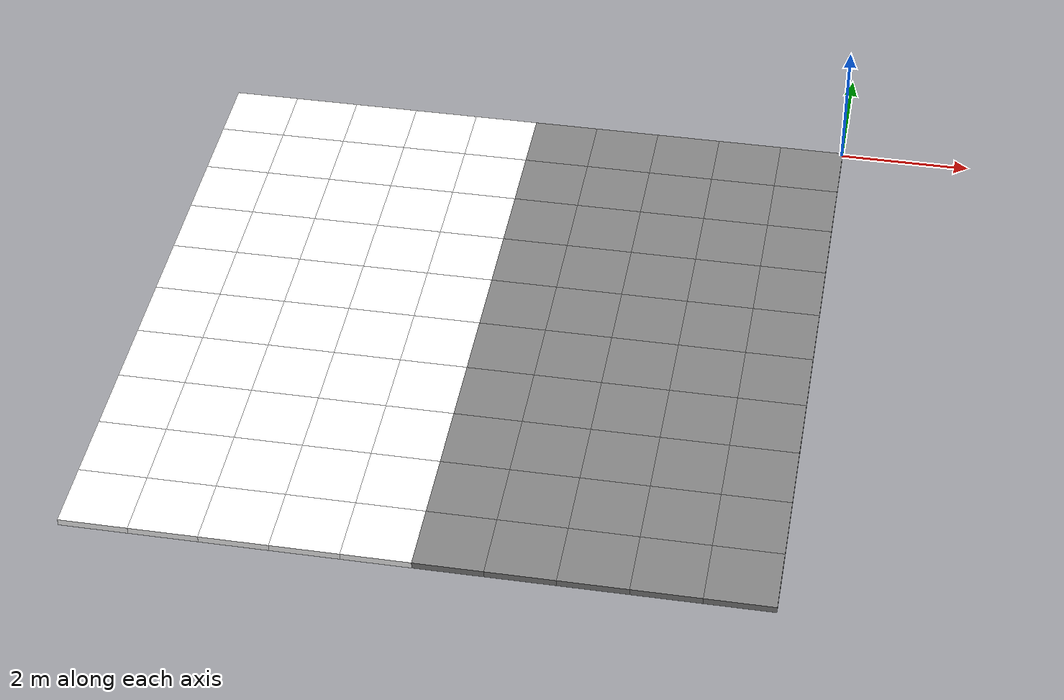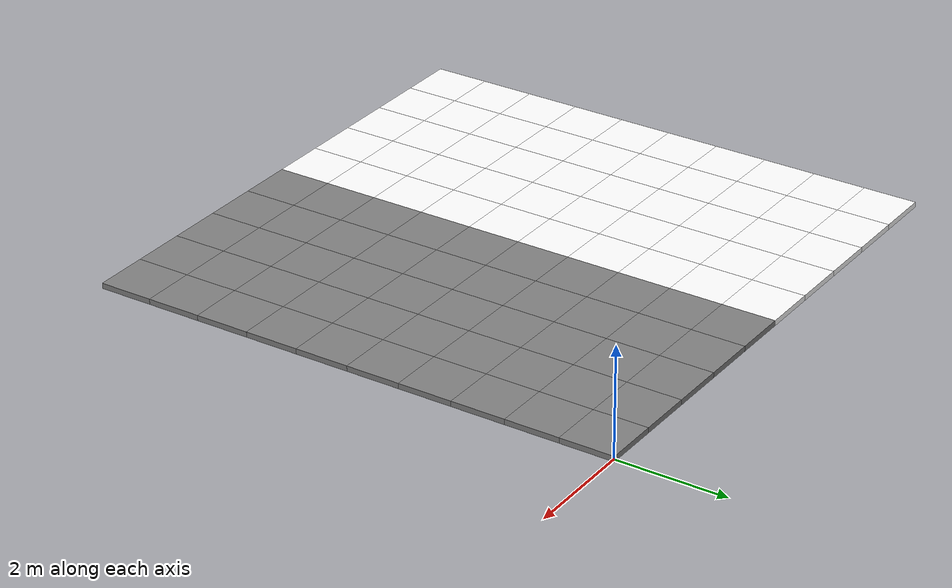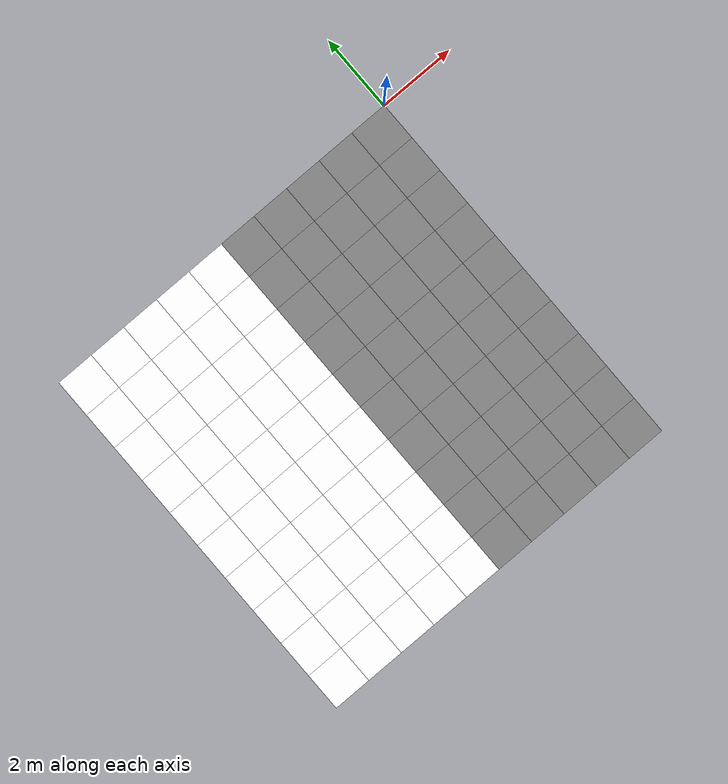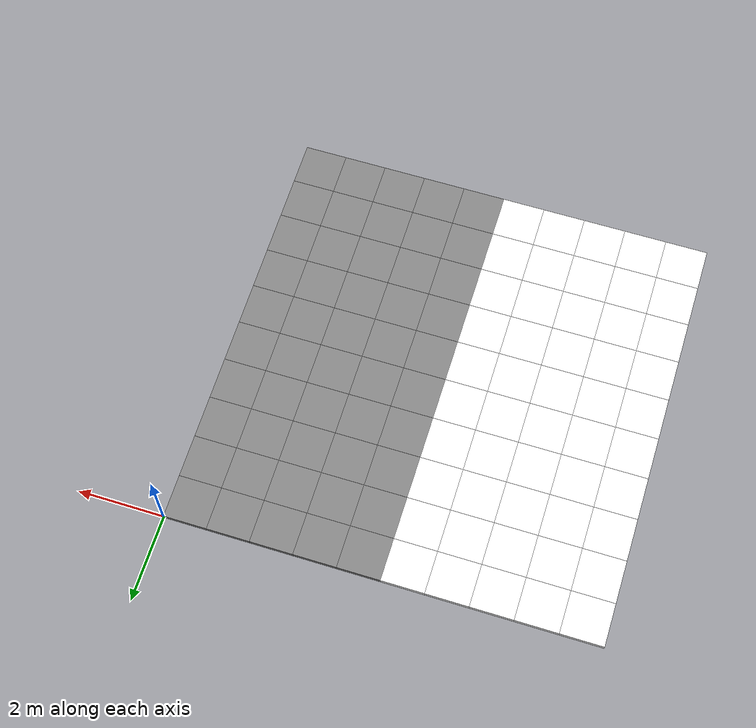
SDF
<sdf version="1.8">
 <world name="binary_discrimination_world">
  <model name="tile_-9.5_-9.5">
   <static>true</static>
   <pose>-9.5 -9.5 0 0 0 0</pose>
   <link name="link">
    <collision name="collision"><geometry><box><size>1 1 0.1</size></box></geometry></collision>
    <visual name="visual">
     <geometry><box><size>1 1 0.1</size></box></geometry>
     <material><ambient>1 1 1 1</ambient><diffuse>1 1 1 1</diffuse></material>
    </visual>
   </link>
  </model>
  <model name="tile_-9.5_-8.5">
   <static>true</static>
   <pose>-9.5 -8.5 0 0 0 0</pose>
   <link name="link">
    <collision name="collision"><geometry><box><size>1 1 0.1</size></box></geometry></collision>
    <visual name="visual">
     <geometry><box><size>1 1 0.1</size></box></geometry>
     <material><ambient>1 1 1 1</ambient><diffuse>1 1 1 1</diffuse></material>
    </visual>
   </link>
  </model>
  <model name="tile_-9.5_-7.5">
   <static>true</static>
   <pose>-9.5 -7.5 0 0 0 0</pose>
   <link name="link">
    <collision name="collision"><geometry><box><size>1 1 0.1</size></box></geometry></collision>
    <visual name="visual">
     <geometry><box><size>1 1 0.1</size></box></geometry>
     <material><ambient>1 1 1 1</ambient><diffuse>1 1 1 1</diffuse></material>
    </visual>
   </link>
  </model>
  <model name="tile_-9.5_-6.5">
   <static>true</static>
   <pose>-9.5 -6.5 0 0 0 0</pose>
   <link name="link">
    <collision name="collision"><geometry><box><size>1 1 0.1</size></box></geometry></collision>
    <visual name="visual">
     <geometry><box><size>1 1 0.1</size></box></geometry>
     <material><ambient>1 1 1 1</ambient><diffuse>1 1 1 1</diffuse></material>
    </visual>
   </link>
  </model>
  <model name="tile_-9.5_-5.5">
   <static>true</static>
   <pose>-9.5 -5.5 0 0 0 0</pose>
   <link name="link">
    <collision name="collision"><geometry><box><size>1 1 0.1</size></box></geometry></collision>
    <visual name="visual">
     <geometry><box><size>1 1 0.1</size></box></geometry>
     <material><ambient>1 1 1 1</ambient><diffuse>1 1 1 1</diffuse></material>
    </visual>
   </link>
  </model>
  <model name="tile_-9.5_-4.5">
   <static>true</static>
   <pose>-9.5 -4.5 0 0 0 0</pose>
   <link name="link">
    <collision name="collision"><geometry><box><size>1 1 0.1</size></box></geometry></collision>
    <visual name="visual">
     <geometry><box><size>1 1 0.1</size></box></geometry>
     <material><ambient>1 1 1 1</ambient><diffuse>1 1 1 1</diffuse></material>
    </visual>
   </link>
  </model>
  <model name="tile_-9.5_-3.5">
   <static>true</static>
   <pose>-9.5 -3.5 0 0 0 0</pose>
   <link name="link">
    <collision name="collision"><geometry><box><size>1 1 0.1</size></box></geometry></collision>
    <visual name="visual">
     <geometry><box><size>1 1 0.1</size></box></geometry>
     <material><ambient>1 1 1 1</ambient><diffuse>1 1 1 1</diffuse></material>
    </visual>
   </link>
  </model>
  <model name="tile_-9.5_-2.5">
   <static>true</static>
   <pose>-9.5 -2.5 0 0 0 0</pose>
   <link name="link">
    <collision name="collision"><geometry><box><size>1 1 0.1</size></box></geometry></collision>
    <visual name="visual">
     <geometry><box><size>1 1 0.1</size></box></geometry>
     <material><ambient>1 1 1 1</ambient><diffuse>1 1 1 1</diffuse></material>
    </visual>
   </link>
  </model>
  <model name="tile_-9.5_-1.5">
   <static>true</static>
   <pose>-9.5 -1.5 0 0 0 0</pose>
   <link name="link">
    <collision name="collision"><geometry><box><size>1 1 0.1</size></box></geometry></collision>
    <visual name="visual">
     <geometry><box><size>1 1 0.1</size></box></geometry>
     <material><ambient>1 1 1 1</ambient><diffuse>1 1 1 1</diffuse></material>
    </visual>
   </link>
  </model>
  <model name="tile_-9.5_-0.5">
   <static>true</static>
   <pose>-9.5 -0.5 0 0 0 0</pose>
   <link name="link">
    <collision name="collision"><geometry><box><size>1 1 0.1</size></box></geometry></collision>
    <visual name="visual">
     <geometry><box><size>1 1 0.1</size></box></geometry>
     <material><ambient>1 1 1 1</ambient><diffuse>1 1 1 1</diffuse></material>
    </visual>
   </link>
  </model>
  <model name="tile_-8.5_-9.5">
   <static>true</static>
   <pose>-8.5 -9.5 0 0 0 0</pose>
   <link name="link">
    <collision name="collision"><geometry><box><size>1 1 0.1</size></box></geometry></collision>
    <visual name="visual">
     <geometry><box><size>1 1 0.1</size></box></geometry>
     <material><ambient>1 1 1 1</ambient><diffuse>1 1 1 1</diffuse></material>
    </visual>
   </link>
  </model>
  <model name="tile_-8.5_-8.5">
   <static>true</static>
   <pose>-8.5 -8.5 0 0 0 0</pose>
   <link name="link">
    <collision name="collision"><geometry><box><size>1 1 0.1</size></box></geometry></collision>
    <visual name="visual">
     <geometry><box><size>1 1 0.1</size></box></geometry>
     <material><ambient>1 1 1 1</ambient><diffuse>1 1 1 1</diffuse></material>
    </visual>
   </link>
  </model>
  <model name="tile_-8.5_-7.5">
   <static>true</static>
   <pose>-8.5 -7.5 0 0 0 0</pose>
   <link name="link">
    <collision name="collision"><geometry><box><size>1 1 0.1</size></box></geometry></collision>
    <visual name="visual">
     <geometry><box><size>1 1 0.1</size></box></geometry>
     <material><ambient>1 1 1 1</ambient><diffuse>1 1 1 1</diffuse></material>
    </visual>
   </link>
  </model>
  <model name="tile_-8.5_-6.5">
   <static>true</static>
   <pose>-8.5 -6.5 0 0 0 0</pose>
   <link name="link">
    <collision name="collision"><geometry><box><size>1 1 0.1</size></box></geometry></collision>
    <visual name="visual">
     <geometry><box><size>1 1 0.1</size></box></geometry>
     <material><ambient>1 1 1 1</ambient><diffuse>1 1 1 1</diffuse></material>
    </visual>
   </link>
  </model>
  <model name="tile_-8.5_-5.5">
   <static>true</static>
   <pose>-8.5 -5.5 0 0 0 0</pose>
   <link name="link">
    <collision name="collision"><geometry><box><size>1 1 0.1</size></box></geometry></collision>
    <visual name="visual">
     <geometry><box><size>1 1 0.1</size></box></geometry>
     <material><ambient>1 1 1 1</ambient><diffuse>1 1 1 1</diffuse></material>
    </visual>
   </link>
  </model>
  <model name="tile_-8.5_-4.5">
   <static>true</static>
   <pose>-8.5 -4.5 0 0 0 0</pose>
   <link name="link">
    <collision name="collision"><geometry><box><size>1 1 0.1</size></box></geometry></collision>
    <visual name="visual">
     <geometry><box><size>1 1 0.1</size></box></geometry>
     <material><ambient>1 1 1 1</ambient><diffuse>1 1 1 1</diffuse></material>
    </visual>
   </link>
  </model>
  <model name="tile_-8.5_-3.5">
   <static>true</static>
   <pose>-8.5 -3.5 0 0 0 0</pose>
   <link name="link">
    <collision name="collision"><geometry><box><size>1 1 0.1</size></box></geometry></collision>
    <visual name="visual">
     <geometry><box><size>1 1 0.1</size></box></geometry>
     <material><ambient>1 1 1 1</ambient><diffuse>1 1 1 1</diffuse></material>
    </visual>
   </link>
  </model>
  <model name="tile_-8.5_-2.5">
   <static>true</static>
   <pose>-8.5 -2.5 0 0 0 0</pose>
   <link name="link">
    <collision name="collision"><geometry><box><size>1 1 0.1</size></box></geometry></collision>
    <visual name="visual">
     <geometry><box><size>1 1 0.1</size></box></geometry>
     <material><ambient>1 1 1 1</ambient><diffuse>1 1 1 1</diffuse></material>
    </visual>
   </link>
  </model>
  <model name="tile_-8.5_-1.5">
   <static>true</static>
   <pose>-8.5 -1.5 0 0 0 0</pose>
   <link name="link">
    <collision name="collision"><geometry><box><size>1 1 0.1</size></box></geometry></collision>
    <visual name="visual">
     <geometry><box><size>1 1 0.1</size></box></geometry>
     <material><ambient>1 1 1 1</ambient><diffuse>1 1 1 1</diffuse></material>
    </visual>
   </link>
  </model>
  <model name="tile_-8.5_-0.5">
   <static>true</static>
   <pose>-8.5 -0.5 0 0 0 0</pose>
   <link name="link">
    <collision name="collision"><geometry><box><size>1 1 0.1</size></box></geometry></collision>
    <visual name="visual">
     <geometry><box><size>1 1 0.1</size></box></geometry>
     <material><ambient>1 1 1 1</ambient><diffuse>1 1 1 1</diffuse></material>
    </visual>
   </link>
  </model>
  <model name="tile_-7.5_-9.5">
   <static>true</static>
   <pose>-7.5 -9.5 0 0 0 0</pose>
   <link name="link">
    <collision name="collision"><geometry><box><size>1 1 0.1</size></box></geometry></collision>
    <visual name="visual">
     <geometry><box><size>1 1 0.1</size></box></geometry>
     <material><ambient>1 1 1 1</ambient><diffuse>1 1 1 1</diffuse></material>
    </visual>
   </link>
  </model>
  <model name="tile_-7.5_-8.5">
   <static>true</static>
   <pose>-7.5 -8.5 0 0 0 0</pose>
   <link name="link">
    <collision name="collision"><geometry><box><size>1 1 0.1</size></box></geometry></collision>
    <visual name="visual">
     <geometry><box><size>1 1 0.1</size></box></geometry>
     <material><ambient>1 1 1 1</ambient><diffuse>1 1 1 1</diffuse></material>
    </visual>
   </link>
  </model>
  <model name="tile_-7.5_-7.5">
   <static>true</static>
   <pose>-7.5 -7.5 0 0 0 0</pose>
   <link name="link">
    <collision name="collision"><geometry><box><size>1 1 0.1</size></box></geometry></collision>
    <visual name="visual">
     <geometry><box><size>1 1 0.1</size></box></geometry>
     <material><ambient>1 1 1 1</ambient><diffuse>1 1 1 1</diffuse></material>
    </visual>
   </link>
  </model>
  <model name="tile_-7.5_-6.5">
   <static>true</static>
   <pose>-7.5 -6.5 0 0 0 0</pose>
   <link name="link">
    <collision name="collision"><geometry><box><size>1 1 0.1</size></box></geometry></collision>
    <visual name="visual">
     <geometry><box><size>1 1 0.1</size></box></geometry>
     <material><ambient>1 1 1 1</ambient><diffuse>1 1 1 1</diffuse></material>
    </visual>
   </link>
  </model>
  <model name="tile_-7.5_-5.5">
   <static>true</static>
   <pose>-7.5 -5.5 0 0 0 0</pose>
   <link name="link">
    <collision name="collision"><geometry><box><size>1 1 0.1</size></box></geometry></collision>
    <visual name="visual">
     <geometry><box><size>1 1 0.1</size></box></geometry>
     <material><ambient>1 1 1 1</ambient><diffuse>1 1 1 1</diffuse></material>
    </visual>
   </link>
  </model>
  <model name="tile_-7.5_-4.5">
   <static>true</static>
   <pose>-7.5 -4.5 0 0 0 0</pose>
   <link name="link">
    <collision name="collision"><geometry><box><size>1 1 0.1</size></box></geometry></collision>
    <visual name="visual">
     <geometry><box><size>1 1 0.1</size></box></geometry>
     <material><ambient>1 1 1 1</ambient><diffuse>1 1 1 1</diffuse></material>
    </visual>
   </link>
  </model>
  <model name="tile_-7.5_-3.5">
   <static>true</static>
   <pose>-7.5 -3.5 0 0 0 0</pose>
   <link name="link">
    <collision name="collision"><geometry><box><size>1 1 0.1</size></box></geometry></collision>
    <visual name="visual">
     <geometry><box><size>1 1 0.1</size></box></geometry>
     <material><ambient>1 1 1 1</ambient><diffuse>1 1 1 1</diffuse></material>
    </visual>
   </link>
  </model>
  <model name="tile_-7.5_-2.5">
   <static>true</static>
   <pose>-7.5 -2.5 0 0 0 0</pose>
   <link name="link">
    <collision name="collision"><geometry><box><size>1 1 0.1</size></box></geometry></collision>
    <visual name="visual">
     <geometry><box><size>1 1 0.1</size></box></geometry>
     <material><ambient>1 1 1 1</ambient><diffuse>1 1 1 1</diffuse></material>
    </visual>
   </link>
  </model>
  <model name="tile_-7.5_-1.5">
   <static>true</static>
   <pose>-7.5 -1.5 0 0 0 0</pose>
   <link name="link">
    <collision name="collision"><geometry><box><size>1 1 0.1</size></box></geometry></collision>
    <visual name="visual">
     <geometry><box><size>1 1 0.1</size></box></geometry>
     <material><ambient>1 1 1 1</ambient><diffuse>1 1 1 1</diffuse></material>
    </visual>
   </link>
  </model>
  <model name="tile_-7.5_-0.5">
   <static>true</static>
   <pose>-7.5 -0.5 0 0 0 0</pose>
   <link name="link">
    <collision name="collision"><geometry><box><size>1 1 0.1</size></box></geometry></collision>
    <visual name="visual">
     <geometry><box><size>1 1 0.1</size></box></geometry>
     <material><ambient>1 1 1 1</ambient><diffuse>1 1 1 1</diffuse></material>
    </visual>
   </link>
  </model>
  <model name="tile_-6.5_-9.5">
   <static>true</static>
   <pose>-6.5 -9.5 0 0 0 0</pose>
   <link name="link">
    <collision name="collision"><geometry><box><size>1 1 0.1</size></box></geometry></collision>
    <visual name="visual">
     <geometry><box><size>1 1 0.1</size></box></geometry>
     <material><ambient>1 1 1 1</ambient><diffuse>1 1 1 1</diffuse></material>
    </visual>
   </link>
  </model>
  <model name="tile_-6.5_-8.5">
   <static>true</static>
   <pose>-6.5 -8.5 0 0 0 0</pose>
   <link name="link">
    <collision name="collision"><geometry><box><size>1 1 0.1</size></box></geometry></collision>
    <visual name="visual">
     <geometry><box><size>1 1 0.1</size></box></geometry>
     <material><ambient>1 1 1 1</ambient><diffuse>1 1 1 1</diffuse></material>
    </visual>
   </link>
  </model>
  <model name="tile_-6.5_-7.5">
   <static>true</static>
   <pose>-6.5 -7.5 0 0 0 0</pose>
   <link name="link">
    <collision name="collision"><geometry><box><size>1 1 0.1</size></box></geometry></collision>
    <visual name="visual">
     <geometry><box><size>1 1 0.1</size></box></geometry>
     <material><ambient>1 1 1 1</ambient><diffuse>1 1 1 1</diffuse></material>
    </visual>
   </link>
  </model>
  <model name="tile_-6.5_-6.5">
   <static>true</static>
   <pose>-6.5 -6.5 0 0 0 0</pose>
   <link name="link">
    <collision name="collision"><geometry><box><size>1 1 0.1</size></box></geometry></collision>
    <visual name="visual">
     <geometry><box><size>1 1 0.1</size></box></geometry>
     <material><ambient>1 1 1 1</ambient><diffuse>1 1 1 1</diffuse></material>
    </visual>
   </link>
  </model>
  <model name="tile_-6.5_-5.5">
   <static>true</static>
   <pose>-6.5 -5.5 0 0 0 0</pose>
   <link name="link">
    <collision name="collision"><geometry><box><size>1 1 0.1</size></box></geometry></collision>
    <visual name="visual">
     <geometry><box><size>1 1 0.1</size></box></geometry>
     <material><ambient>1 1 1 1</ambient><diffuse>1 1 1 1</diffuse></material>
    </visual>
   </link>
  </model>
  <model name="tile_-6.5_-4.5">
   <static>true</static>
   <pose>-6.5 -4.5 0 0 0 0</pose>
   <link name="link">
    <collision name="collision"><geometry><box><size>1 1 0.1</size></box></geometry></collision>
    <visual name="visual">
     <geometry><box><size>1 1 0.1</size></box></geometry>
     <material><ambient>1 1 1 1</ambient><diffuse>1 1 1 1</diffuse></material>
    </visual>
   </link>
  </model>
  <model name="tile_-6.5_-3.5">
   <static>true</static>
   <pose>-6.5 -3.5 0 0 0 0</pose>
   <link name="link">
    <collision name="collision"><geometry><box><size>1 1 0.1</size></box></geometry></collision>
    <visual name="visual">
     <geometry><box><size>1 1 0.1</size></box></geometry>
     <material><ambient>1 1 1 1</ambient><diffuse>1 1 1 1</diffuse></material>
    </visual>
   </link>
  </model>
  <model name="tile_-6.5_-2.5">
   <static>true</static>
   <pose>-6.5 -2.5 0 0 0 0</pose>
   <link name="link">
    <collision name="collision"><geometry><box><size>1 1 0.1</size></box></geometry></collision>
    <visual name="visual">
     <geometry><box><size>1 1 0.1</size></box></geometry>
     <material><ambient>1 1 1 1</ambient><diffuse>1 1 1 1</diffuse></material>
    </visual>
   </link>
  </model>
  <model name="tile_-6.5_-1.5">
   <static>true</static>
   <pose>-6.5 -1.5 0 0 0 0</pose>
   <link name="link">
    <collision name="collision"><geometry><box><size>1 1 0.1</size></box></geometry></collision>
    <visual name="visual">
     <geometry><box><size>1 1 0.1</size></box></geometry>
     <material><ambient>1 1 1 1</ambient><diffuse>1 1 1 1</diffuse></material>
    </visual>
   </link>
  </model>
  <model name="tile_-6.5_-0.5">
   <static>true</static>
   <pose>-6.5 -0.5 0 0 0 0</pose>
   <link name="link">
    <collision name="collision"><geometry><box><size>1 1 0.1</size></box></geometry></collision>
    <visual name="visual">
     <geometry><box><size>1 1 0.1</size></box></geometry>
     <material><ambient>1 1 1 1</ambient><diffuse>1 1 1 1</diffuse></material>
    </visual>
   </link>
  </model>
  <model name="tile_-5.5_-9.5">
   <static>true</static>
   <pose>-5.5 -9.5 0 0 0 0</pose>
   <link name="link">
    <collision name="collision"><geometry><box><size>1 1 0.1</size></box></geometry></collision>
    <visual name="visual">
     <geometry><box><size>1 1 0.1</size></box></geometry>
     <material><ambient>1 1 1 1</ambient><diffuse>1 1 1 1</diffuse></material>
    </visual>
   </link>
  </model>
  <model name="tile_-5.5_-8.5">
   <static>true</static>
   <pose>-5.5 -8.5 0 0 0 0</pose>
   <link name="link">
    <collision name="collision"><geometry><box><size>1 1 0.1</size></box></geometry></collision>
    <visual name="visual">
     <geometry><box><size>1 1 0.1</size></box></geometry>
     <material><ambient>1 1 1 1</ambient><diffuse>1 1 1 1</diffuse></material>
    </visual>
   </link>
  </model>
  <model name="tile_-5.5_-7.5">
   <static>true</static>
   <pose>-5.5 -7.5 0 0 0 0</pose>
   <link name="link">
    <collision name="collision"><geometry><box><size>1 1 0.1</size></box></geometry></collision>
    <visual name="visual">
     <geometry><box><size>1 1 0.1</size></box></geometry>
     <material><ambient>1 1 1 1</ambient><diffuse>1 1 1 1</diffuse></material>
    </visual>
   </link>
  </model>
  <model name="tile_-5.5_-6.5">
   <static>true</static>
   <pose>-5.5 -6.5 0 0 0 0</pose>
   <link name="link">
    <collision name="collision"><geometry><box><size>1 1 0.1</size></box></geometry></collision>
    <visual name="visual">
     <geometry><box><size>1 1 0.1</size></box></geometry>
     <material><ambient>1 1 1 1</ambient><diffuse>1 1 1 1</diffuse></material>
    </visual>
   </link>
  </model>
  <model name="tile_-5.5_-5.5">
   <static>true</static>
   <pose>-5.5 -5.5 0 0 0 0</pose>
   <link name="link">
    <collision name="collision"><geometry><box><size>1 1 0.1</size></box></geometry></collision>
    <visual name="visual">
     <geometry><box><size>1 1 0.1</size></box></geometry>
     <material><ambient>1 1 1 1</ambient><diffuse>1 1 1 1</diffuse></material>
    </visual>
   </link>
  </model>
  <model name="tile_-5.5_-4.5">
   <static>true</static>
   <pose>-5.5 -4.5 0 0 0 0</pose>
   <link name="link">
    <collision name="collision"><geometry><box><size>1 1 0.1</size></box></geometry></collision>
    <visual name="visual">
     <geometry><box><size>1 1 0.1</size></box></geometry>
     <material><ambient>1 1 1 1</ambient><diffuse>1 1 1 1</diffuse></material>
    </visual>
   </link>
  </model>
  <model name="tile_-5.5_-3.5">
   <static>true</static>
   <pose>-5.5 -3.5 0 0 0 0</pose>
   <link name="link">
    <collision name="collision"><geometry><box><size>1 1 0.1</size></box></geometry></collision>
    <visual name="visual">
     <geometry><box><size>1 1 0.1</size></box></geometry>
     <material><ambient>1 1 1 1</ambient><diffuse>1 1 1 1</diffuse></material>
    </visual>
   </link>
  </model>
  <model name="tile_-5.5_-2.5">
   <static>true</static>
   <pose>-5.5 -2.5 0 0 0 0</pose>
   <link name="link">
    <collision name="collision"><geometry><box><size>1 1 0.1</size></box></geometry></collision>
    <visual name="visual">
     <geometry><box><size>1 1 0.1</size></box></geometry>
     <material><ambient>1 1 1 1</ambient><diffuse>1 1 1 1</diffuse></material>
    </visual>
   </link>
  </model>
  <model name="tile_-5.5_-1.5">
   <static>true</static>
   <pose>-5.5 -1.5 0 0 0 0</pose>
   <link name="link">
    <collision name="collision"><geometry><box><size>1 1 0.1</size></box></geometry></collision>
    <visual name="visual">
     <geometry><box><size>1 1 0.1</size></box></geometry>
     <material><ambient>1 1 1 1</ambient><diffuse>1 1 1 1</diffuse></material>
    </visual>
   </link>
  </model>
  <model name="tile_-5.5_-0.5">
   <static>true</static>
   <pose>-5.5 -0.5 0 0 0 0</pose>
   <link name="link">
    <collision name="collision"><geometry><box><size>1 1 0.1</size></box></geometry></collision>
    <visual name="visual">
     <geometry><box><size>1 1 0.1</size></box></geometry>
     <material><ambient>1 1 1 1</ambient><diffuse>1 1 1 1</diffuse></material>
    </visual>
   </link>
  </model>
  <model name="tile_-4.5_-9.5">
   <static>true</static>
   <pose>-4.5 -9.5 0 0 0 0</pose>
   <link name="link">
    <collision name="collision"><geometry><box><size>1 1 0.1</size></box></geometry></collision>
    <visual name="visual">
     <geometry><box><size>1 1 0.1</size></box></geometry>
     <material><ambient>0.5 0.5 0.5 1</ambient><diffuse>0.5 0.5 0.5 1</diffuse></material>
    </visual>
   </link>
  </model>
  <model name="tile_-4.5_-8.5">
   <static>true</static>
   <pose>-4.5 -8.5 0 0 0 0</pose>
   <link name="link">
    <collision name="collision"><geometry><box><size>1 1 0.1</size></box></geometry></collision>
    <visual name="visual">
     <geometry><box><size>1 1 0.1</size></box></geometry>
     <material><ambient>0.5 0.5 0.5 1</ambient><diffuse>0.5 0.5 0.5 1</diffuse></material>
    </visual>
   </link>
  </model>
  <model name="tile_-4.5_-7.5">
   <static>true</static>
   <pose>-4.5 -7.5 0 0 0 0</pose>
   <link name="link">
    <collision name="collision"><geometry><box><size>1 1 0.1</size></box></geometry></collision>
    <visual name="visual">
     <geometry><box><size>1 1 0.1</size></box></geometry>
     <material><ambient>0.5 0.5 0.5 1</ambient><diffuse>0.5 0.5 0.5 1</diffuse></material>
    </visual>
   </link>
  </model>
  <model name="tile_-4.5_-6.5">
   <static>true</static>
   <pose>-4.5 -6.5 0 0 0 0</pose>
   <link name="link">
    <collision name="collision"><geometry><box><size>1 1 0.1</size></box></geometry></collision>
    <visual name="visual">
     <geometry><box><size>1 1 0.1</size></box></geometry>
     <material><ambient>0.5 0.5 0.5 1</ambient><diffuse>0.5 0.5 0.5 1</diffuse></material>
    </visual>
   </link>
  </model>
  <model name="tile_-4.5_-5.5">
   <static>true</static>
   <pose>-4.5 -5.5 0 0 0 0</pose>
   <link name="link">
    <collision name="collision"><geometry><box><size>1 1 0.1</size></box></geometry></collision>
    <visual name="visual">
     <geometry><box><size>1 1 0.1</size></box></geometry>
     <material><ambient>0.5 0.5 0.5 1</ambient><diffuse>0.5 0.5 0.5 1</diffuse></material>
    </visual>
   </link>
  </model>
  <model name="tile_-4.5_-4.5">
   <static>true</static>
   <pose>-4.5 -4.5 0 0 0 0</pose>
   <link name="link">
    <collision name="collision"><geometry><box><size>1 1 0.1</size></box></geometry></collision>
    <visual name="visual">
     <geometry><box><size>1 1 0.1</size></box></geometry>
     <material><ambient>0.5 0.5 0.5 1</ambient><diffuse>0.5 0.5 0.5 1</diffuse></material>
    </visual>
   </link>
  </model>
  <model name="tile_-4.5_-3.5">
   <static>true</static>
   <pose>-4.5 -3.5 0 0 0 0</pose>
   <link name="link">
    <collision name="collision"><geometry><box><size>1 1 0.1</size></box></geometry></collision>
    <visual name="visual">
     <geometry><box><size>1 1 0.1</size></box></geometry>
     <material><ambient>0.5 0.5 0.5 1</ambient><diffuse>0.5 0.5 0.5 1</diffuse></material>
    </visual>
   </link>
  </model>
  <model name="tile_-4.5_-2.5">
   <static>true</static>
   <pose>-4.5 -2.5 0 0 0 0</pose>
   <link name="link">
    <collision name="collision"><geometry><box><size>1 1 0.1</size></box></geometry></collision>
    <visual name="visual">
     <geometry><box><size>1 1 0.1</size></box></geometry>
     <material><ambient>0.5 0.5 0.5 1</ambient><diffuse>0.5 0.5 0.5 1</diffuse></material>
    </visual>
   </link>
  </model>
  <model name="tile_-4.5_-1.5">
   <static>true</static>
   <pose>-4.5 -1.5 0 0 0 0</pose>
   <link name="link">
    <collision name="collision"><geometry><box><size>1 1 0.1</size></box></geometry></collision>
    <visual name="visual">
     <geometry><box><size>1 1 0.1</size></box></geometry>
     <material><ambient>0.5 0.5 0.5 1</ambient><diffuse>0.5 0.5 0.5 1</diffuse></material>
    </visual>
   </link>
  </model>
  <model name="tile_-4.5_-0.5">
   <static>true</static>
   <pose>-4.5 -0.5 0 0 0 0</pose>
   <link name="link">
    <collision name="collision"><geometry><box><size>1 1 0.1</size></box></geometry></collision>
    <visual name="visual">
     <geometry><box><size>1 1 0.1</size></box></geometry>
     <material><ambient>0.5 0.5 0.5 1</ambient><diffuse>0.5 0.5 0.5 1</diffuse></material>
    </visual>
   </link>
  </model>
  <model name="tile_-3.5_-9.5">
   <static>true</static>
   <pose>-3.5 -9.5 0 0 0 0</pose>
   <link name="link">
    <collision name="collision"><geometry><box><size>1 1 0.1</size></box></geometry></collision>
    <visual name="visual">
     <geometry><box><size>1 1 0.1</size></box></geometry>
     <material><ambient>0.5 0.5 0.5 1</ambient><diffuse>0.5 0.5 0.5 1</diffuse></material>
    </visual>
   </link>
  </model>
  <model name="tile_-3.5_-8.5">
   <static>true</static>
   <pose>-3.5 -8.5 0 0 0 0</pose>
   <link name="link">
    <collision name="collision"><geometry><box><size>1 1 0.1</size></box></geometry></collision>
    <visual name="visual">
     <geometry><box><size>1 1 0.1</size></box></geometry>
     <material><ambient>0.5 0.5 0.5 1</ambient><diffuse>0.5 0.5 0.5 1</diffuse></material>
    </visual>
   </link>
  </model>
  <model name="tile_-3.5_-7.5">
   <static>true</static>
   <pose>-3.5 -7.5 0 0 0 0</pose>
   <link name="link">
    <collision name="collision"><geometry><box><size>1 1 0.1</size></box></geometry></collision>
    <visual name="visual">
     <geometry><box><size>1 1 0.1</size></box></geometry>
     <material><ambient>0.5 0.5 0.5 1</ambient><diffuse>0.5 0.5 0.5 1</diffuse></material>
    </visual>
   </link>
  </model>
  <model name="tile_-3.5_-6.5">
   <static>true</static>
   <pose>-3.5 -6.5 0 0 0 0</pose>
   <link name="link">
    <collision name="collision"><geometry><box><size>1 1 0.1</size></box></geometry></collision>
    <visual name="visual">
     <geometry><box><size>1 1 0.1</size></box></geometry>
     <material><ambient>0.5 0.5 0.5 1</ambient><diffuse>0.5 0.5 0.5 1</diffuse></material>
    </visual>
   </link>
  </model>
  <model name="tile_-3.5_-5.5">
   <static>true</static>
   <pose>-3.5 -5.5 0 0 0 0</pose>
   <link name="link">
    <collision name="collision"><geometry><box><size>1 1 0.1</size></box></geometry></collision>
    <visual name="visual">
     <geometry><box><size>1 1 0.1</size></box></geometry>
     <material><ambient>0.5 0.5 0.5 1</ambient><diffuse>0.5 0.5 0.5 1</diffuse></material>
    </visual>
   </link>
  </model>
  <model name="tile_-3.5_-4.5">
   <static>true</static>
   <pose>-3.5 -4.5 0 0 0 0</pose>
   <link name="link">
    <collision name="collision"><geometry><box><size>1 1 0.1</size></box></geometry></collision>
    <visual name="visual">
     <geometry><box><size>1 1 0.1</size></box></geometry>
     <material><ambient>0.5 0.5 0.5 1</ambient><diffuse>0.5 0.5 0.5 1</diffuse></material>
    </visual>
   </link>
  </model>
  <model name="tile_-3.5_-3.5">
   <static>true</static>
   <pose>-3.5 -3.5 0 0 0 0</pose>
   <link name="link">
    <collision name="collision"><geometry><box><size>1 1 0.1</size></box></geometry></collision>
    <visual name="visual">
     <geometry><box><size>1 1 0.1</size></box></geometry>
     <material><ambient>0.5 0.5 0.5 1</ambient><diffuse>0.5 0.5 0.5 1</diffuse></material>
    </visual>
   </link>
  </model>
  <model name="tile_-3.5_-2.5">
   <static>true</static>
   <pose>-3.5 -2.5 0 0 0 0</pose>
   <link name="link">
    <collision name="collision"><geometry><box><size>1 1 0.1</size></box></geometry></collision>
    <visual name="visual">
     <geometry><box><size>1 1 0.1</size></box></geometry>
     <material><ambient>0.5 0.5 0.5 1</ambient><diffuse>0.5 0.5 0.5 1</diffuse></material>
    </visual>
   </link>
  </model>
  <model name="tile_-3.5_-1.5">
   <static>true</static>
   <pose>-3.5 -1.5 0 0 0 0</pose>
   <link name="link">
    <collision name="collision"><geometry><box><size>1 1 0.1</size></box></geometry></collision>
    <visual name="visual">
     <geometry><box><size>1 1 0.1</size></box></geometry>
     <material><ambient>0.5 0.5 0.5 1</ambient><diffuse>0.5 0.5 0.5 1</diffuse></material>
    </visual>
   </link>
  </model>
  <model name="tile_-3.5_-0.5">
   <static>true</static>
   <pose>-3.5 -0.5 0 0 0 0</pose>
   <link name="link">
    <collision name="collision"><geometry><box><size>1 1 0.1</size></box></geometry></collision>
    <visual name="visual">
     <geometry><box><size>1 1 0.1</size></box></geometry>
     <material><ambient>0.5 0.5 0.5 1</ambient><diffuse>0.5 0.5 0.5 1</diffuse></material>
    </visual>
   </link>
  </model>
  <model name="tile_-2.5_-9.5">
   <static>true</static>
   <pose>-2.5 -9.5 0 0 0 0</pose>
   <link name="link">
    <collision name="collision"><geometry><box><size>1 1 0.1</size></box></geometry></collision>
    <visual name="visual">
     <geometry><box><size>1 1 0.1</size></box></geometry>
     <material><ambient>0.5 0.5 0.5 1</ambient><diffuse>0.5 0.5 0.5 1</diffuse></material>
    </visual>
   </link>
  </model>
  <model name="tile_-2.5_-8.5">
   <static>true</static>
   <pose>-2.5 -8.5 0 0 0 0</pose>
   <link name="link">
    <collision name="collision"><geometry><box><size>1 1 0.1</size></box></geometry></collision>
    <visual name="visual">
     <geometry><box><size>1 1 0.1</size></box></geometry>
     <material><ambient>0.5 0.5 0.5 1</ambient><diffuse>0.5 0.5 0.5 1</diffuse></material>
    </visual>
   </link>
  </model>
  <model name="tile_-2.5_-7.5">
   <static>true</static>
   <pose>-2.5 -7.5 0 0 0 0</pose>
   <link name="link">
    <collision name="collision"><geometry><box><size>1 1 0.1</size></box></geometry></collision>
    <visual name="visual">
     <geometry><box><size>1 1 0.1</size></box></geometry>
     <material><ambient>0.5 0.5 0.5 1</ambient><diffuse>0.5 0.5 0.5 1</diffuse></material>
    </visual>
   </link>
  </model>
  <model name="tile_-2.5_-6.5">
   <static>true</static>
   <pose>-2.5 -6.5 0 0 0 0</pose>
   <link name="link">
    <collision name="collision"><geometry><box><size>1 1 0.1</size></box></geometry></collision>
    <visual name="visual">
     <geometry><box><size>1 1 0.1</size></box></geometry>
     <material><ambient>0.5 0.5 0.5 1</ambient><diffuse>0.5 0.5 0.5 1</diffuse></material>
    </visual>
   </link>
  </model>
  <model name="tile_-2.5_-5.5">
   <static>true</static>
   <pose>-2.5 -5.5 0 0 0 0</pose>
   <link name="link">
    <collision name="collision"><geometry><box><size>1 1 0.1</size></box></geometry></collision>
    <visual name="visual">
     <geometry><box><size>1 1 0.1</size></box></geometry>
     <material><ambient>0.5 0.5 0.5 1</ambient><diffuse>0.5 0.5 0.5 1</diffuse></material>
    </visual>
   </link>
  </model>
  <model name="tile_-2.5_-4.5">
   <static>true</static>
   <pose>-2.5 -4.5 0 0 0 0</pose>
   <link name="link">
    <collision name="collision"><geometry><box><size>1 1 0.1</size></box></geometry></collision>
    <visual name="visual">
     <geometry><box><size>1 1 0.1</size></box></geometry>
     <material><ambient>0.5 0.5 0.5 1</ambient><diffuse>0.5 0.5 0.5 1</diffuse></material>
    </visual>
   </link>
  </model>
  <model name="tile_-2.5_-3.5">
   <static>true</static>
   <pose>-2.5 -3.5 0 0 0 0</pose>
   <link name="link">
    <collision name="collision"><geometry><box><size>1 1 0.1</size></box></geometry></collision>
    <visual name="visual">
     <geometry><box><size>1 1 0.1</size></box></geometry>
     <material><ambient>0.5 0.5 0.5 1</ambient><diffuse>0.5 0.5 0.5 1</diffuse></material>
    </visual>
   </link>
  </model>
  <model name="tile_-2.5_-2.5">
   <static>true</static>
   <pose>-2.5 -2.5 0 0 0 0</pose>
   <link name="link">
    <collision name="collision"><geometry><box><size>1 1 0.1</size></box></geometry></collision>
    <visual name="visual">
     <geometry><box><size>1 1 0.1</size></box></geometry>
     <material><ambient>0.5 0.5 0.5 1</ambient><diffuse>0.5 0.5 0.5 1</diffuse></material>
    </visual>
   </link>
  </model>
  <model name="tile_-2.5_-1.5">
   <static>true</static>
   <pose>-2.5 -1.5 0 0 0 0</pose>
   <link name="link">
    <collision name="collision"><geometry><box><size>1 1 0.1</size></box></geometry></collision>
    <visual name="visual">
     <geometry><box><size>1 1 0.1</size></box></geometry>
     <material><ambient>0.5 0.5 0.5 1</ambient><diffuse>0.5 0.5 0.5 1</diffuse></material>
    </visual>
   </link>
  </model>
  <model name="tile_-2.5_-0.5">
   <static>true</static>
   <pose>-2.5 -0.5 0 0 0 0</pose>
   <link name="link">
    <collision name="collision"><geometry><box><size>1 1 0.1</size></box></geometry></collision>
    <visual name="visual">
     <geometry><box><size>1 1 0.1</size></box></geometry>
     <material><ambient>0.5 0.5 0.5 1</ambient><diffuse>0.5 0.5 0.5 1</diffuse></material>
    </visual>
   </link>
  </model>
  <model name="tile_-1.5_-9.5">
   <static>true</static>
   <pose>-1.5 -9.5 0 0 0 0</pose>
   <link name="link">
    <collision name="collision"><geometry><box><size>1 1 0.1</size></box></geometry></collision>
    <visual name="visual">
     <geometry><box><size>1 1 0.1</size></box></geometry>
     <material><ambient>0.5 0.5 0.5 1</ambient><diffuse>0.5 0.5 0.5 1</diffuse></material>
    </visual>
   </link>
  </model>
  <model name="tile_-1.5_-8.5">
   <static>true</static>
   <pose>-1.5 -8.5 0 0 0 0</pose>
   <link name="link">
    <collision name="collision"><geometry><box><size>1 1 0.1</size></box></geometry></collision>
    <visual name="visual">
     <geometry><box><size>1 1 0.1</size></box></geometry>
     <material><ambient>0.5 0.5 0.5 1</ambient><diffuse>0.5 0.5 0.5 1</diffuse></material>
    </visual>
   </link>
  </model>
  <model name="tile_-1.5_-7.5">
   <static>true</static>
   <pose>-1.5 -7.5 0 0 0 0</pose>
   <link name="link">
    <collision name="collision"><geometry><box><size>1 1 0.1</size></box></geometry></collision>
    <visual name="visual">
     <geometry><box><size>1 1 0.1</size></box></geometry>
     <material><ambient>0.5 0.5 0.5 1</ambient><diffuse>0.5 0.5 0.5 1</diffuse></material>
    </visual>
   </link>
  </model>
  <model name="tile_-1.5_-6.5">
   <static>true</static>
   <pose>-1.5 -6.5 0 0 0 0</pose>
   <link name="link">
    <collision name="collision"><geometry><box><size>1 1 0.1</size></box></geometry></collision>
    <visual name="visual">
     <geometry><box><size>1 1 0.1</size></box></geometry>
     <material><ambient>0.5 0.5 0.5 1</ambient><diffuse>0.5 0.5 0.5 1</diffuse></material>
    </visual>
   </link>
  </model>
  <model name="tile_-1.5_-5.5">
   <static>true</static>
   <pose>-1.5 -5.5 0 0 0 0</pose>
   <link name="link">
    <collision name="collision"><geometry><box><size>1 1 0.1</size></box></geometry></collision>
    <visual name="visual">
     <geometry><box><size>1 1 0.1</size></box></geometry>
     <material><ambient>0.5 0.5 0.5 1</ambient><diffuse>0.5 0.5 0.5 1</diffuse></material>
    </visual>
   </link>
  </model>
  <model name="tile_-1.5_-4.5">
   <static>true</static>
   <pose>-1.5 -4.5 0 0 0 0</pose>
   <link name="link">
    <collision name="collision"><geometry><box><size>1 1 0.1</size></box></geometry></collision>
    <visual name="visual">
     <geometry><box><size>1 1 0.1</size></box></geometry>
     <material><ambient>0.5 0.5 0.5 1</ambient><diffuse>0.5 0.5 0.5 1</diffuse></material>
    </visual>
   </link>
  </model>
  <model name="tile_-1.5_-3.5">
   <static>true</static>
   <pose>-1.5 -3.5 0 0 0 0</pose>
   <link name="link">
    <collision name="collision"><geometry><box><size>1 1 0.1</size></box></geometry></collision>
    <visual name="visual">
     <geometry><box><size>1 1 0.1</size></box></geometry>
     <material><ambient>0.5 0.5 0.5 1</ambient><diffuse>0.5 0.5 0.5 1</diffuse></material>
    </visual>
   </link>
  </model>
  <model name="tile_-1.5_-2.5">
   <static>true</static>
   <pose>-1.5 -2.5 0 0 0 0</pose>
   <link name="link">
    <collision name="collision"><geometry><box><size>1 1 0.1</size></box></geometry></collision>
    <visual name="visual">
     <geometry><box><size>1 1 0.1</size></box></geometry>
     <material><ambient>0.5 0.5 0.5 1</ambient><diffuse>0.5 0.5 0.5 1</diffuse></material>
    </visual>
   </link>
  </model>
  <model name="tile_-1.5_-1.5">
   <static>true</static>
   <pose>-1.5 -1.5 0 0 0 0</pose>
   <link name="link">
    <collision name="collision"><geometry><box><size>1 1 0.1</size></box></geometry></collision>
    <visual name="visual">
     <geometry><box><size>1 1 0.1</size></box></geometry>
     <material><ambient>0.5 0.5 0.5 1</ambient><diffuse>0.5 0.5 0.5 1</diffuse></material>
    </visual>
   </link>
  </model>
  <model name="tile_-1.5_-0.5">
   <static>true</static>
   <pose>-1.5 -0.5 0 0 0 0</pose>
   <link name="link">
    <collision name="collision"><geometry><box><size>1 1 0.1</size></box></geometry></collision>
    <visual name="visual">
     <geometry><box><size>1 1 0.1</size></box></geometry>
     <material><ambient>0.5 0.5 0.5 1</ambient><diffuse>0.5 0.5 0.5 1</diffuse></material>
    </visual>
   </link>
  </model>
  <model name="tile_-0.5_-9.5">
   <static>true</static>
   <pose>-0.5 -9.5 0 0 0 0</pose>
   <link name="link">
    <collision name="collision"><geometry><box><size>1 1 0.1</size></box></geometry></collision>
    <visual name="visual">
     <geometry><box><size>1 1 0.1</size></box></geometry>
     <material><ambient>0.5 0.5 0.5 1</ambient><diffuse>0.5 0.5 0.5 1</diffuse></material>
    </visual>
   </link>
  </model>
  <model name="tile_-0.5_-8.5">
   <static>true</static>
   <pose>-0.5 -8.5 0 0 0 0</pose>
   <link name="link">
    <collision name="collision"><geometry><box><size>1 1 0.1</size></box></geometry></collision>
    <visual name="visual">
     <geometry><box><size>1 1 0.1</size></box></geometry>
     <material><ambient>0.5 0.5 0.5 1</ambient><diffuse>0.5 0.5 0.5 1</diffuse></material>
    </visual>
   </link>
  </model>
  <model name="tile_-0.5_-7.5">
   <static>true</static>
   <pose>-0.5 -7.5 0 0 0 0</pose>
   <link name="link">
    <collision name="collision"><geometry><box><size>1 1 0.1</size></box></geometry></collision>
    <visual name="visual">
     <geometry><box><size>1 1 0.1</size></box></geometry>
     <material><ambient>0.5 0.5 0.5 1</ambient><diffuse>0.5 0.5 0.5 1</diffuse></material>
    </visual>
   </link>
  </model>
  <model name="tile_-0.5_-6.5">
   <static>true</static>
   <pose>-0.5 -6.5 0 0 0 0</pose>
   <link name="link">
    <collision name="collision"><geometry><box><size>1 1 0.1</size></box></geometry></collision>
    <visual name="visual">
     <geometry><box><size>1 1 0.1</size></box></geometry>
     <material><ambient>0.5 0.5 0.5 1</ambient><diffuse>0.5 0.5 0.5 1</diffuse></material>
    </visual>
   </link>
  </model>
  <model name="tile_-0.5_-5.5">
   <static>true</static>
   <pose>-0.5 -5.5 0 0 0 0</pose>
   <link name="link">
    <collision name="collision"><geometry><box><size>1 1 0.1</size></box></geometry></collision>
    <visual name="visual">
     <geometry><box><size>1 1 0.1</size></box></geometry>
     <material><ambient>0.5 0.5 0.5 1</ambient><diffuse>0.5 0.5 0.5 1</diffuse></material>
    </visual>
   </link>
  </model>
  <model name="tile_-0.5_-4.5">
   <static>true</static>
   <pose>-0.5 -4.5 0 0 0 0</pose>
   <link name="link">
    <collision name="collision"><geometry><box><size>1 1 0.1</size></box></geometry></collision>
    <visual name="visual">
     <geometry><box><size>1 1 0.1</size></box></geometry>
     <material><ambient>0.5 0.5 0.5 1</ambient><diffuse>0.5 0.5 0.5 1</diffuse></material>
    </visual>
   </link>
  </model>
  <model name="tile_-0.5_-3.5">
   <static>true</static>
   <pose>-0.5 -3.5 0 0 0 0</pose>
   <link name="link">
    <collision name="collision"><geometry><box><size>1 1 0.1</size></box></geometry></collision>
    <visual name="visual">
     <geometry><box><size>1 1 0.1</size></box></geometry>
     <material><ambient>0.5 0.5 0.5 1</ambient><diffuse>0.5 0.5 0.5 1</diffuse></material>
    </visual>
   </link>
  </model>
  <model name="tile_-0.5_-2.5">
   <static>true</static>
   <pose>-0.5 -2.5 0 0 0 0</pose>
   <link name="link">
    <collision name="collision"><geometry><box><size>1 1 0.1</size></box></geometry></collision>
    <visual name="visual">
     <geometry><box><size>1 1 0.1</size></box></geometry>
     <material><ambient>0.5 0.5 0.5 1</ambient><diffuse>0.5 0.5 0.5 1</diffuse></material>
    </visual>
   </link>
  </model>
  <model name="tile_-0.5_-1.5">
   <static>true</static>
   <pose>-0.5 -1.5 0 0 0 0</pose>
   <link name="link">
    <collision name="collision"><geometry><box><size>1 1 0.1</size></box></geometry></collision>
    <visual name="visual">
     <geometry><box><size>1 1 0.1</size></box></geometry>
     <material><ambient>0.5 0.5 0.5 1</ambient><diffuse>0.5 0.5 0.5 1</diffuse></material>
    </visual>
   </link>
  </model>
  <model name="tile_-0.5_-0.5">
   <static>true</static>
   <pose>-0.5 -0.5 0 0 0 0</pose>
   <link name="link">
    <collision name="collision"><geometry><box><size>1 1 0.1</size></box></geometry></collision>
    <visual name="visual">
     <geometry><box><size>1 1 0.1</size></box></geometry>
     <material><ambient>0.5 0.5 0.5 1</ambient><diffuse>0.5 0.5 0.5 1</diffuse></material>
    </visual>
   </link>
  </model>
 </world>
</sdf>
